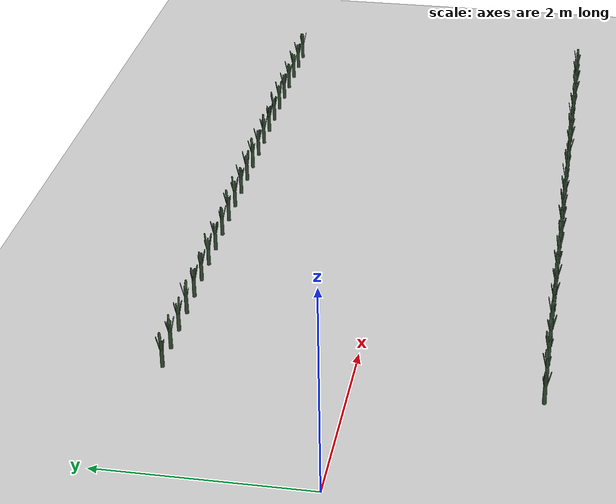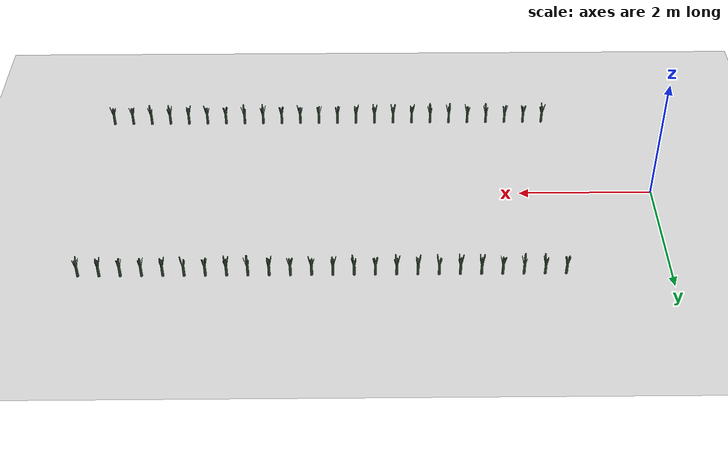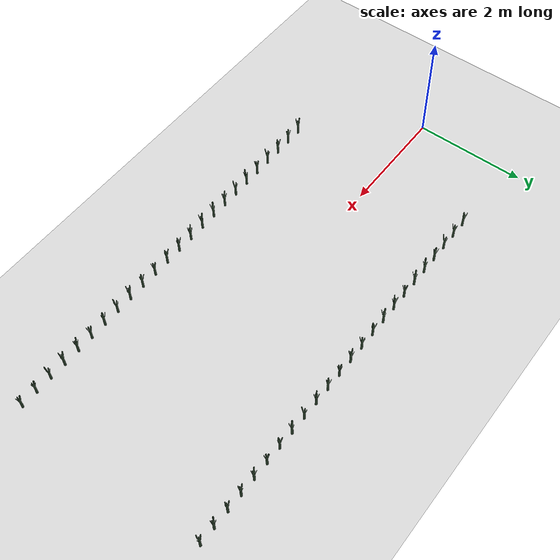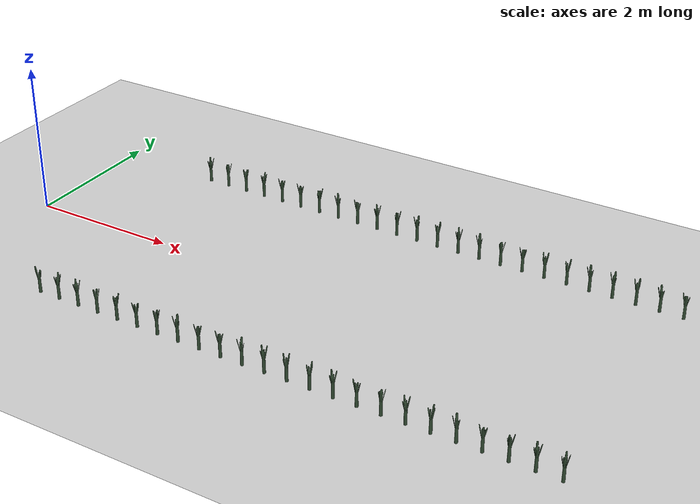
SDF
<sdf version="1.6">
 <world name="default">
  <light name="sun" type="directional">
   <pose>0 0 10 0 -0 0</pose>
   <diffuse>0.5 0.5 0.5 1</diffuse>
   <specular>0.1 0.1 0.1 1</specular>
   <attenuation>
    <range>1000</range>
    <constant>0.9</constant>
    <linear>0.01</linear>
    <quadratic>0.001</quadratic>
   </attenuation>
   <direction>0.9 0.5 -1</direction>
  </light>
  <scene><background>130 200 255 1</background><ambient>130 140 140 1</ambient></scene>
  <include><uri>model://dirt_plane</uri></include>
  <include>
   <uri>model://Leek</uri>
   <pose>1.500000 1.750000 0.15 0 0 -125.096077</pose>
   <static>0</static>
  </include>
  <include><uri>model://Leek</uri><pose>1.800000 1.750000 0.15 0 0 23.943805</pose><static>0</static></include>
  <include><uri>model://Leek</uri><pose>2.100000 1.750000 0.15 0 0 130.248851</pose><static>0</static></include>
  <include><uri>model://Leek</uri><pose>2.400000 1.750000 0.15 0 0 169.748344</pose><static>0</static></include>
  <include><uri>model://Leek</uri><pose>2.700000 1.750000 0.15 0 0 -52.773694</pose><static>0</static></include>
  <include><uri>model://Leek</uri><pose>3.000000 1.750000 0.15 0 0 173.265365</pose><static>0</static></include>
  <include><uri>model://Leek</uri><pose>3.300000 1.750000 0.15 0 0 168.895288</pose><static>0</static></include>
  <include><uri>model://Leek</uri><pose>3.600000 1.750000 0.15 0 0 83.927623</pose><static>0</static></include>
  <include><uri>model://Leek</uri><pose>3.900000 1.750000 0.15 0 0 78.819947</pose><static>0</static></include>
  <include>
   <uri>model://Leek</uri>
   <pose>4.200000 1.750000 0.15 0 0 -106.177861</pose>
   <static>0</static>
  </include>
  <include>
   <uri>model://Leek</uri>
   <pose>4.500000 1.750000 0.15 0 0 -114.036824</pose>
   <static>0</static>
  </include>
  <include><uri>model://Leek</uri><pose>4.800000 1.750000 0.15 0 0 -29.733354</pose><static>0</static></include>
  <include><uri>model://Leek</uri><pose>5.100000 1.750000 0.15 0 0 -37.972043</pose><static>0</static></include>
  <include>
   <uri>model://Leek</uri>
   <pose>5.400000 1.750000 0.15 0 0 -131.541786</pose>
   <static>0</static>
  </include>
  <include><uri>model://Leek</uri><pose>5.700000 1.750000 0.15 0 0 -92.193070</pose><static>0</static></include>
  <include><uri>model://Leek</uri><pose>6.000000 1.750000 0.15 0 0 -13.947961</pose><static>0</static></include>
  <include><uri>model://Leek</uri><pose>6.300000 1.750000 0.15 0 0 154.548536</pose><static>0</static></include>
  <include><uri>model://Leek</uri><pose>6.600000 1.750000 0.15 0 0 158.074570</pose><static>0</static></include>
  <include><uri>model://Leek</uri><pose>6.900000 1.750000 0.15 0 0 12.082503</pose><static>0</static></include>
  <include><uri>model://Leek</uri><pose>7.200000 1.750000 0.15 0 0 33.469335</pose><static>0</static></include>
  <include><uri>model://Leek</uri><pose>7.500000 1.750000 0.15 0 0 -4.696753</pose><static>0</static></include>
  <include>
   <uri>model://Leek</uri>
   <pose>7.800000 1.750000 0.15 0 0 -143.160125</pose>
   <static>0</static>
  </include>
  <include><uri>model://Leek</uri><pose>8.100000 1.750000 0.15 0 0 -73.301271</pose><static>0</static></include>
  <include>
   <uri>model://Leek</uri>
   <pose>8.400000 1.750000 0.15 0 0 -141.417774</pose>
   <static>0</static>
  </include>
  <include>
   <uri>model://Leek</uri>
   <pose>1.477716 -1.750000 0.15 0 0 -122.472108</pose>
   <static>0</static>
  </include>
  <include>
   <uri>model://Leek</uri>
   <pose>1.777716 -1.750000 0.15 0 0 -100.172912</pose>
   <static>0</static>
  </include>
  <include>
   <uri>model://Leek</uri>
   <pose>2.077716 -1.750000 0.15 0 0 -124.861173</pose>
   <static>0</static>
  </include>
  <include>
   <uri>model://Leek</uri>
   <pose>2.377716 -1.750000 0.15 0 0 149.443708</pose>
   <static>0</static>
  </include>
  <include><uri>model://Leek</uri><pose>2.677716 -1.750000 0.15 0 0 81.373222</pose><static>0</static></include>
  <include>
   <uri>model://Leek</uri>
   <pose>2.977716 -1.750000 0.15 0 0 123.722502</pose>
   <static>0</static>
  </include>
  <include>
   <uri>model://Leek</uri>
   <pose>3.277716 -1.750000 0.15 0 0 -76.839044</pose>
   <static>0</static>
  </include>
  <include>
   <uri>model://Leek</uri>
   <pose>3.577716 -1.750000 0.15 0 0 -35.714833</pose>
   <static>0</static>
  </include>
  <include><uri>model://Leek</uri><pose>3.877716 -1.750000 0.15 0 0 35.294696</pose><static>0</static></include>
  <include>
   <uri>model://Leek</uri>
   <pose>4.177716 -1.750000 0.15 0 0 154.391367</pose>
   <static>0</static>
  </include>
  <include>
   <uri>model://Leek</uri>
   <pose>4.477716 -1.750000 0.15 0 0 -16.819898</pose>
   <static>0</static>
  </include>
  <include><uri>model://Leek</uri><pose>4.777716 -1.750000 0.15 0 0 95.200235</pose><static>0</static></include>
  <include>
   <uri>model://Leek</uri>
   <pose>5.077716 -1.750000 0.15 0 0 101.732929</pose>
   <static>0</static>
  </include>
  <include>
   <uri>model://Leek</uri>
   <pose>5.377716 -1.750000 0.15 0 0 156.857170</pose>
   <static>0</static>
  </include>
  <include>
   <uri>model://Leek</uri>
   <pose>5.677716 -1.750000 0.15 0 0 -18.068205</pose>
   <static>0</static>
  </include>
  <include>
   <uri>model://Leek</uri>
   <pose>5.977716 -1.750000 0.15 0 0 -59.600854</pose>
   <static>0</static>
  </include>
  <include>
   <uri>model://Leek</uri>
   <pose>6.277716 -1.750000 0.15 0 0 174.616680</pose>
   <static>0</static>
  </include>
  <include>
   <uri>model://Leek</uri>
   <pose>6.577716 -1.750000 0.15 0 0 176.759991</pose>
   <static>0</static>
  </include>
  <include>
   <uri>model://Leek</uri>
   <pose>6.877716 -1.750000 0.15 0 0 175.734065</pose>
   <static>0</static>
  </include>
  <include>
   <uri>model://Leek</uri>
   <pose>7.177716 -1.750000 0.15 0 0 -41.857845</pose>
   <static>0</static>
  </include>
  <include>
   <uri>model://Leek</uri>
   <pose>7.477716 -1.750000 0.15 0 0 -65.650311</pose>
   <static>0</static>
  </include>
  <include>
   <uri>model://Leek</uri>
   <pose>7.777716 -1.750000 0.15 0 0 -89.060556</pose>
   <static>0</static>
  </include>
  <include>
   <uri>model://Leek</uri>
   <pose>8.077716 -1.750000 0.15 0 0 -156.631214</pose>
   <static>0</static>
  </include>
  <include>
   <uri>model://Leek</uri>
   <pose>8.377716 -1.750000 0.15 0 0 -24.996257</pose>
   <static>0</static>
  </include>
 </world>
</sdf>

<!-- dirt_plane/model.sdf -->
<sdf version="1.4">
<model name="dirt_plane">
  <static>true</static>
    <link name="link">
      <collision name="collision">
        <geometry>
          <plane>
            <normal>0 0 1</normal>
            <size>100 100</size>
          </plane>
        </geometry>
        <surface>
          <friction>
            <ode>
              <mu>100</mu>
              <mu2>50</mu2>
            </ode>
          </friction>
        </surface>
      </collision>
      <visual name="visual">
        <cast_shadows>false</cast_shadows>
        <geometry>
          <plane>
            <normal>0 0 1</normal>
            <size>100 100</size>
          </plane>
        </geometry>
        <material>
          <script>
            <uri>model://ground_plane/materials/scripts/my_ground_plane.material</uri>
            <uri>model://ground_plane/materials/textures</uri>
            <name>my_ground_plane/Dirt</name>
          </script>
        </material>
      </visual>
    </link>
  </model>
</sdf>

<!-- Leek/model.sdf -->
<sdf version='1.6'>
  <model name='Leek'>
    <link name='link'>
      <pose frame=''>0 0 0 0 -0 0</pose>
      <inertial>
        <mass>1</mass>
        <inertia>
          <ixx>0.145833</ixx>
          <ixy>0</ixy>
          <ixz>0</ixz>
          <iyy>0.145833</iyy>
          <iyz>0</iyz>
          <izz>0.125</izz>
        </inertia>
        <pose frame=''>0 0 0 0 -0 0</pose>
      </inertial>
      <self_collide>0</self_collide>
      <kinematic>0</kinematic>
      <gravity>1</gravity>
      <visual name='visual'>
        <geometry>
          <mesh>
            <uri>model://Leek/Poireau.dae</uri>
            <scale>1 1 1</scale>
          </mesh>
        </geometry>
        <material>
          <script>
            <name>Gazebo/Grey</name>
            <uri>file://media/materials/scripts/gazebo.material</uri>
          </script>
          <ambient>0.3 0.7 0.4 0</ambient>
          <diffuse>0.2 0.3 0.2 0</diffuse>
          <specular>0 0 0 1</specular>
          <emissive>0 0 0 1</emissive>
          <shader type='vertex'>
            <normal_map>__default__</normal_map>
          </shader>
        </material>
        <pose frame=''>0 0 -0.08 0 -0 0</pose>
        <cast_shadows>1</cast_shadows>
        <transparency>0</transparency>
      </visual>
      <collision name='collision'>
        <laser_retro>0</laser_retro>
        <max_contacts>10</max_contacts>
        <pose frame=''>0 0 0 0 -0 0</pose>
        <geometry>
          <cylinder>
            <radius>0.02</radius>
            <length>0.25</length>
          </cylinder>
        </geometry>
        <surface>
          <friction>
            <ode>
              <mu>1</mu>
              <mu2>1</mu2>
              <fdir1>0 0 0</fdir1>
              <slip1>0</slip1>
              <slip2>0</slip2>
            </ode>
            <torsional>
              <coefficient>1</coefficient>
              <patch_radius>0</patch_radius>
              <surface_radius>0</surface_radius>
              <use_patch_radius>1</use_patch_radius>
              <ode>
                <slip>0</slip>
              </ode>
            </torsional>
          </friction>
          <bounce>
            <restitution_coefficient>0</restitution_coefficient>
            <threshold>1e+06</threshold>
          </bounce>
          <contact>
            <collide_without_contact>0</collide_without_contact>
            <collide_without_contact_bitmask>1</collide_without_contact_bitmask>
            <collide_bitmask>1</collide_bitmask>
            <ode>
              <soft_cfm>0</soft_cfm>
              <soft_erp>0.2</soft_erp>
              <kp>1e+13</kp>
              <kd>1</kd>
              <max_vel>0.01</max_vel>
              <min_depth>0</min_depth>
            </ode>
            <bullet>
              <split_impulse>1</split_impulse>
              <split_impulse_penetration_threshold>-0.01</split_impulse_penetration_threshold>
              <soft_cfm>0</soft_cfm>
              <soft_erp>0.2</soft_erp>
              <kp>1e+13</kp>
              <kd>1</kd>
            </bullet>
          </contact>
        </surface>
      </collision>
    </link>
    <static>0</static>
    <allow_auto_disable>1</allow_auto_disable>
  </model>
</sdf>
